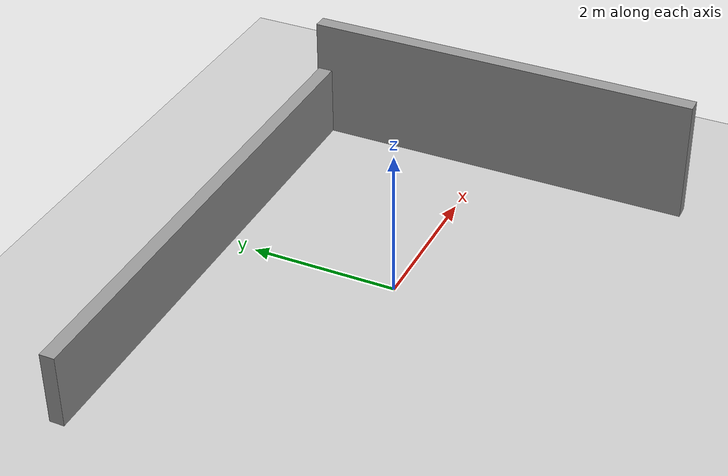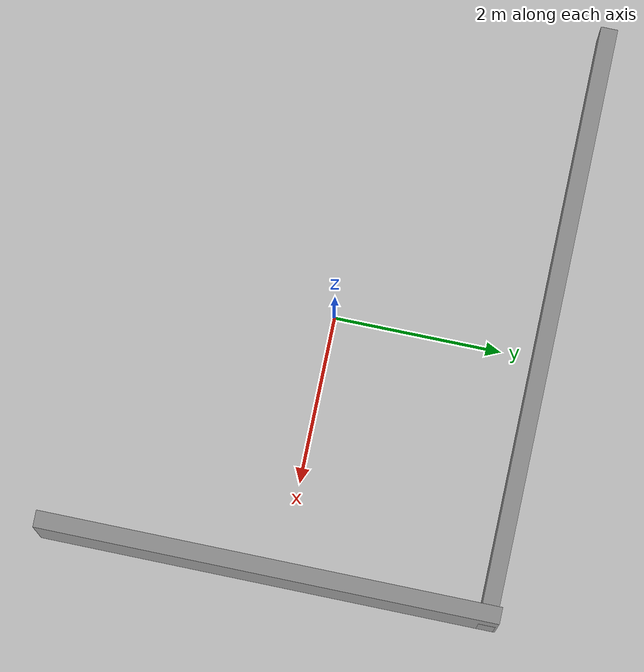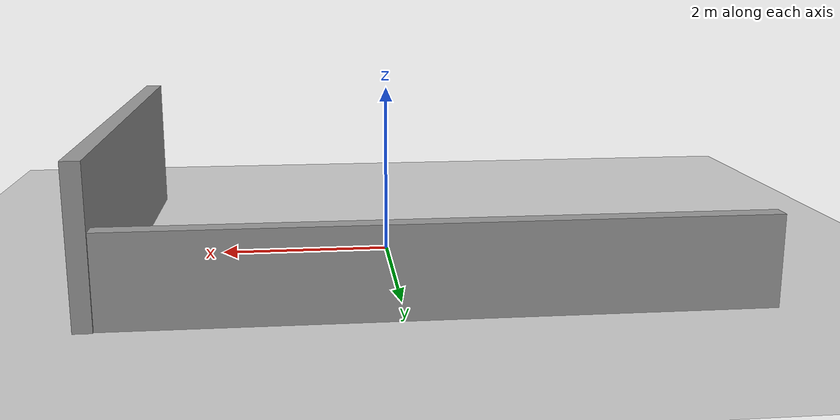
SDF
<sdf version="1.4">
 <world name="default">
  <light name="sun" type="directional">
   <pose>0 0 10 0 -0 0</pose>
   <diffuse>0.8 0.8 0.8 1</diffuse>
   <specular>0.2 0.2 0.2 1</specular>
   <attenuation>
    <range>1000</range>
    <constant>0.9</constant>
    <linear>0.01</linear>
    <quadratic>0.001</quadratic>
   </attenuation>
   <direction>-0.5 0.1 -0.9</direction>
  </light>
  <model name="ground_plane">
   <static>1</static>
   <link name="link">
    <collision name="collision">
     <geometry><plane><normal>0 0 1</normal><size>100 100</size></plane></geometry>
     <surface><friction><ode><mu>100</mu><mu2>50</mu2></ode></friction></surface>
    </collision>
    <visual name="visual">
     <cast_shadows>0</cast_shadows>
     <geometry><plane><normal>0 0 1</normal><size>100 100</size></plane></geometry>
     <material>
      <script><uri>file://media/materials/scripts/gazebo.material</uri><name>Gazebo/Grey</name></script>
     </material>
    </visual>
    <velocity_decay><linear>0</linear><angular>0</angular></velocity_decay>
   </link>
  </model>
  <physics type="ode">
   <max_step_size>0.001</max_step_size>
   <real_time_factor>1</real_time_factor>
   <real_time_update_rate>1000</real_time_update_rate>
   <gravity>0 0 -9.8</gravity>
  </physics>
  <scene><ambient>0.4 0.4 0.4 1</ambient><background>0.7 0.7 0.7 1</background><shadows>1</shadows></scene>
  <spherical_coordinates>
   <surface_model>EARTH_WGS84</surface_model>
   <latitude_deg>0</latitude_deg>
   <longitude_deg>0</longitude_deg>
   <elevation>0</elevation>
   <heading_deg>0</heading_deg>
  </spherical_coordinates>
  <model name="small_world.sdf">
   <link name="Wall_10">
    <collision name="Wall_10_Collision">
     <geometry><box><size>7.11605 0.2 1</size></box></geometry>
     <pose>0 0 0.5 0 -0 0</pose>
    </collision>
    <visual name="Wall_10_Visual">
     <pose>0 0 0.5 0 -0 0</pose>
     <geometry><box><size>7.11605 0.2 1</size></box></geometry>
     <material>
      <script><uri>file://media/materials/scripts/gazebo.material</uri><name>Gazebo/Grey</name></script>
     </material>
    </visual>
    <velocity_decay><linear>0</linear><angular>0</angular></velocity_decay>
    <pose>-0.312 2.467 0 0 -0 3.14159</pose>
   </link>
   <link name="Wall_8">
    <collision name="Wall_8_Collision">
     <geometry><box><size>5.42752 0.2 1.7</size></box></geometry>
     <pose>0 0 0.85 0 -0 0</pose>
    </collision>
    <visual name="Wall_8_Visual">
     <pose>0 0 0.85 0 -0 0</pose>
     <geometry><box><size>5.42752 0.2 1.7</size></box></geometry>
     <material>
      <script><uri>file://media/materials/scripts/gazebo.material</uri><name>Gazebo/Grey</name></script>
     </material>
    </visual>
    <velocity_decay><linear>0</linear><angular>0</angular></velocity_decay>
    <pose>3.146 -0.1235 0 0 -0 1.5708</pose>
   </link>
   <static>1</static>
  </model>
 </world>
</sdf>
